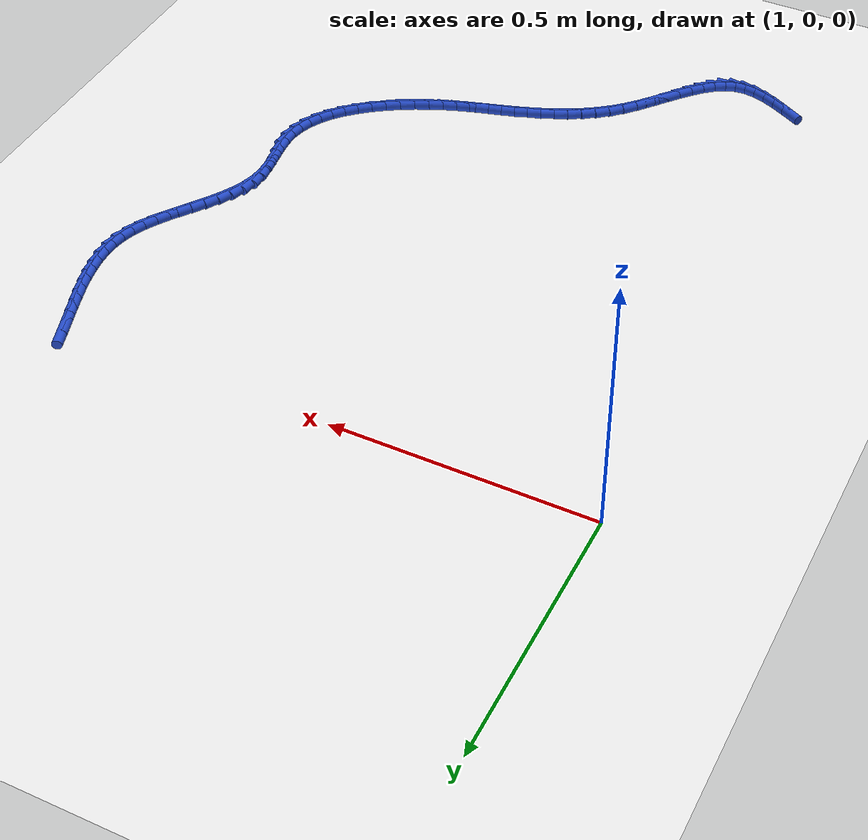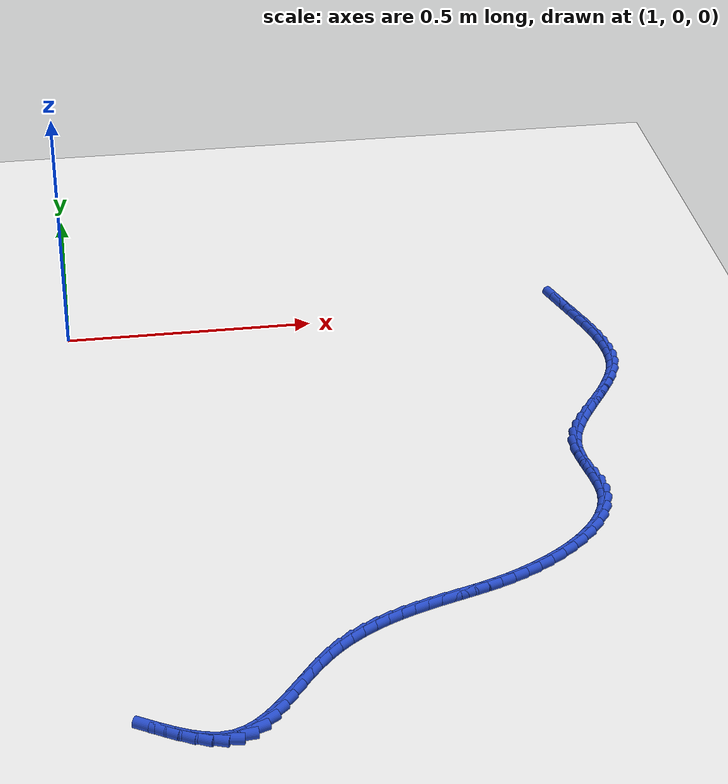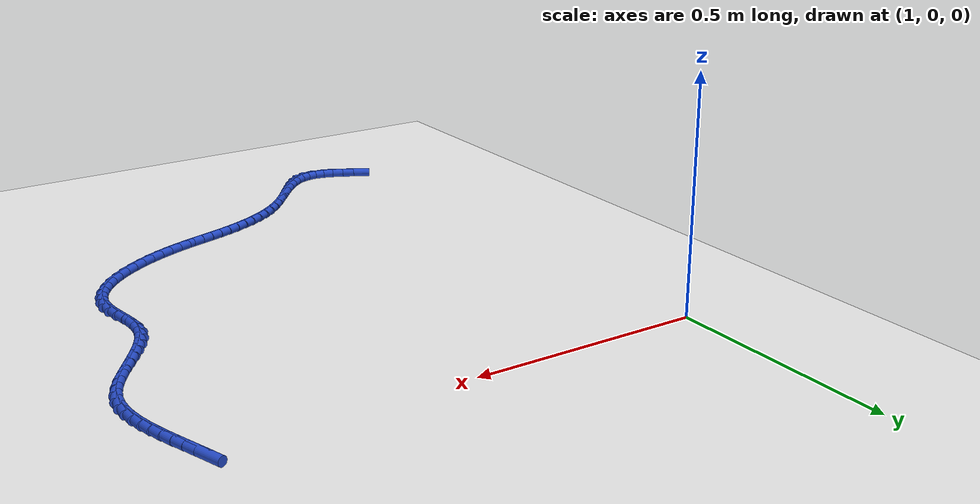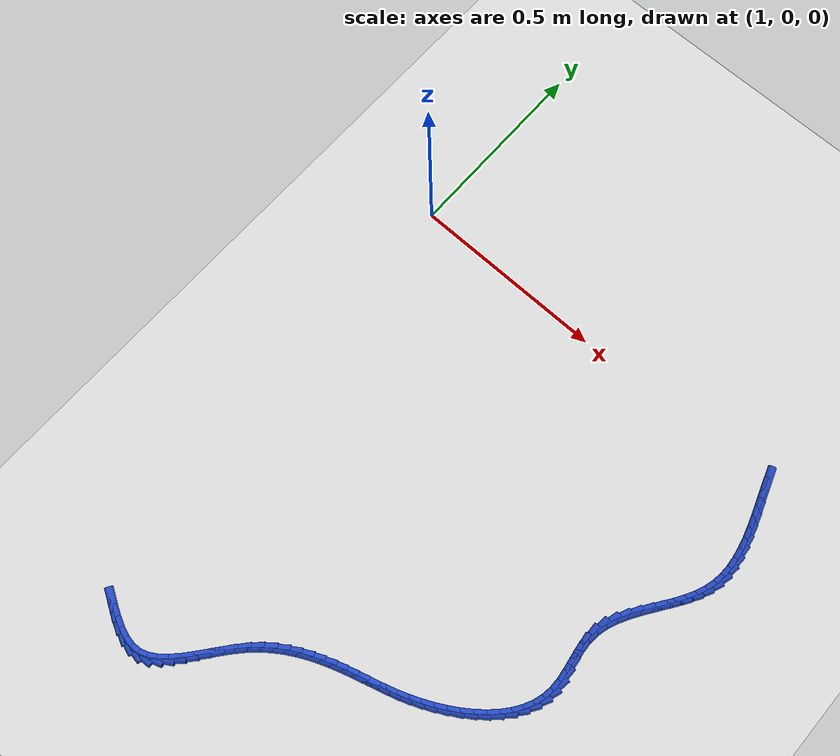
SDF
<sdf version="1.6">
 <world name="default">
  <model name="ground_plane">
   <static>1</static>
   <link name="link">
    <collision name="collision">
     <geometry><plane><normal>0 0 1</normal><size>100 100</size></plane></geometry>
     <surface><friction><ode><mu>100</mu><mu2>50</mu2></ode></friction></surface>
    </collision>
    <visual name="visual">
     <cast_shadows>0</cast_shadows>
     <geometry><plane><normal>0 0 1</normal><size>100 100</size></plane></geometry>
     <material>
      <script><uri>file://media/materials/scripts/gazebo.material</uri><name>Gazebo/WhiteGlow</name></script>
     </material>
    </visual>
   </link>
  </model>
  <model name="line">
   <link name="link_137">
    <pose>2.028803340235459 0.009797451628139248 0.01 0 1.57 -1.2444256641460556</pose>
    <collision name="collision">
     <geometry><cylinder><radius>0.01</radius><length>0.08</length></cylinder></geometry>
    </collision>
    <visual name="visual">
     <material>
      <script><name>Gazebo/Blue</name><uri>file://media/materials/scripts/gazebo.material</uri></script>
     </material>
     <geometry><cylinder><radius>0.01</radius><length>0.08</length></cylinder></geometry>
    </visual>
   </link>
   <link name="link_138">
    <pose>2.037893691281057 -0.01705935607861669 0.01 0 1.57 -1.2396976369071522</pose>
    <collision name="collision">
     <geometry><cylinder><radius>0.01</radius><length>0.08</length></cylinder></geometry>
    </collision>
    <visual name="visual">
     <material>
      <script><name>Gazebo/Blue</name><uri>file://media/materials/scripts/gazebo.material</uri></script>
     </material>
     <geometry><cylinder><radius>0.01</radius><length>0.08</length></cylinder></geometry>
    </visual>
   </link>
   <link name="link_139">
    <pose>2.0471262742887304 -0.04391755107153796 0.01 0 1.57 -1.247375525983384</pose>
    <collision name="collision">
     <geometry><cylinder><radius>0.01</radius><length>0.08</length></cylinder></geometry>
    </collision>
    <visual name="visual">
     <material>
      <script><name>Gazebo/Blue</name><uri>file://media/materials/scripts/gazebo.material</uri></script>
     </material>
     <geometry><cylinder><radius>0.01</radius><length>0.08</length></cylinder></geometry>
    </visual>
   </link>
   <link name="link_140">
    <pose>2.056109026346599 -0.07071652104633279 0.01 0 1.57 -1.2677875328046018</pose>
    <collision name="collision">
     <geometry><cylinder><radius>0.01</radius><length>0.08</length></cylinder></geometry>
    </collision>
    <visual name="visual">
     <material>
      <script><name>Gazebo/Blue</name><uri>file://media/materials/scripts/gazebo.material</uri></script>
     </material>
     <geometry><cylinder><radius>0.01</radius><length>0.08</length></cylinder></geometry>
    </visual>
   </link>
   <link name="link_141">
    <pose>2.0644498845427854 -0.09739565369870931 0.01 0 1.57 -1.3017368532502958</pose>
    <collision name="collision">
     <geometry><cylinder><radius>0.01</radius><length>0.08</length></cylinder></geometry>
    </collision>
    <visual name="visual">
     <material>
      <script><name>Gazebo/Blue</name><uri>file://media/materials/scripts/gazebo.material</uri></script>
     </material>
     <geometry><cylinder><radius>0.01</radius><length>0.08</length></cylinder></geometry>
    </visual>
   </link>
   <link name="link_142">
    <pose>2.07175678596541 -0.1238943367243733 0.01 0 1.57 -1.3504638349806817</pose>
    <collision name="collision">
     <geometry><cylinder><radius>0.01</radius><length>0.08</length></cylinder></geometry>
    </collision>
    <visual name="visual">
     <material>
      <script><name>Gazebo/Blue</name><uri>file://media/materials/scripts/gazebo.material</uri></script>
     </material>
     <geometry><cylinder><radius>0.01</radius><length>0.08</length></cylinder></geometry>
    </visual>
   </link>
   <link name="link_143">
    <pose>2.0776376677025934 -0.15015195781903376 0.01 0 1.57 -1.415529474384406</pose>
    <collision name="collision">
     <geometry><cylinder><radius>0.01</radius><length>0.08</length></cylinder></geometry>
    </collision>
    <visual name="visual">
     <material>
      <script><name>Gazebo/Blue</name><uri>file://media/materials/scripts/gazebo.material</uri></script>
     </material>
     <geometry><cylinder><radius>0.01</radius><length>0.08</length></cylinder></geometry>
    </visual>
   </link>
   <link name="link_144">
    <pose>2.0817004668424555 -0.17610790467839643 0.01 0 1.57 -1.4985351561907372</pose>
    <collision name="collision">
     <geometry><cylinder><radius>0.01</radius><length>0.08</length></cylinder></geometry>
    </collision>
    <visual name="visual">
     <material>
      <script><name>Gazebo/Blue</name><uri>file://media/materials/scripts/gazebo.material</uri></script>
     </material>
     <geometry><cylinder><radius>0.01</radius><length>0.08</length></cylinder></geometry>
    </visual>
   </link>
   <link name="link_145">
    <pose>2.083553120473119 -0.20170156499817032 0.01 0 1.57 1.5410263356693488</pose>
    <collision name="collision">
     <geometry><cylinder><radius>0.01</radius><length>0.08</length></cylinder></geometry>
    </collision>
    <visual name="visual">
     <material>
      <script><name>Gazebo/Blue</name><uri>file://media/materials/scripts/gazebo.material</uri></script>
     </material>
     <geometry><cylinder><radius>0.01</radius><length>0.08</length></cylinder></geometry>
    </visual>
   </link>
   <link name="link_146">
    <pose>2.082803565682704 -0.22687232647406128 0.01 0 1.57 1.4202928965746395</pose>
    <collision name="collision">
     <geometry><cylinder><radius>0.01</radius><length>0.08</length></cylinder></geometry>
    </collision>
    <visual name="visual">
     <material>
      <script><name>Gazebo/Blue</name><uri>file://media/materials/scripts/gazebo.material</uri></script>
     </material>
     <geometry><cylinder><radius>0.01</radius><length>0.08</length></cylinder></geometry>
    </visual>
   </link>
   <link name="link_147">
    <pose>2.079059739559331 -0.2515595768017781 0.01 0 1.57 1.2846820670003232</pose>
    <collision name="collision">
     <geometry><cylinder><radius>0.01</radius><length>0.08</length></cylinder></geometry>
    </collision>
    <visual name="visual">
     <material>
      <script><name>Gazebo/Blue</name><uri>file://media/materials/scripts/gazebo.material</uri></script>
     </material>
     <geometry><cylinder><radius>0.01</radius><length>0.08</length></cylinder></geometry>
    </visual>
   </link>
   <link name="link_148">
    <pose>2.0719558659725643 -0.2757071432725313 0.01 0 1.57 1.1606111574790388</pose>
    <collision name="collision">
     <geometry><cylinder><radius>0.01</radius><length>0.08</length></cylinder></geometry>
    </collision>
    <visual name="visual">
     <material>
      <script><name>Gazebo/Blue</name><uri>file://media/materials/scripts/gazebo.material</uri></script>
     </material>
     <geometry><cylinder><radius>0.01</radius><length>0.08</length></cylinder></geometry>
    </visual>
   </link>
   <link name="link_149">
    <pose>2.0616741291144356 -0.2993513986338731 0.01 0 1.57 1.0691576318690421</pose>
    <collision name="collision">
     <geometry><cylinder><radius>0.01</radius><length>0.08</length></cylinder></geometry>
    </collision>
    <visual name="visual">
     <material>
      <script><name>Gazebo/Blue</name><uri>file://media/materials/scripts/gazebo.material</uri></script>
     </material>
     <geometry><cylinder><radius>0.01</radius><length>0.08</length></cylinder></geometry>
    </visual>
   </link>
   <link name="link_150">
    <pose>2.0489149421524595 -0.32261623973876213 0.01 0 1.57 1.008054456794518</pose>
    <collision name="collision">
     <geometry><cylinder><radius>0.01</radius><length>0.08</length></cylinder></geometry>
    </collision>
    <visual name="visual">
     <material>
      <script><name>Gazebo/Blue</name><uri>file://media/materials/scripts/gazebo.material</uri></script>
     </material>
     <geometry><cylinder><radius>0.01</radius><length>0.08</length></cylinder></geometry>
    </visual>
   </link>
   <link name="link_151">
    <pose>2.0343990529646137 -0.34562899778564427 0.01 0 1.57 0.9739782910002871</pose>
    <collision name="collision">
     <geometry><cylinder><radius>0.01</radius><length>0.08</length></cylinder></geometry>
    </collision>
    <visual name="visual">
     <material>
      <script><name>Gazebo/Blue</name><uri>file://media/materials/scripts/gazebo.material</uri></script>
     </material>
     <geometry><cylinder><radius>0.01</radius><length>0.08</length></cylinder></geometry>
    </visual>
   </link>
   <link name="link_152">
    <pose>2.018847209428877 -0.36851700397296555 0.01 0 1.57 0.9646694848656698</pose>
    <collision name="collision">
     <geometry><cylinder><radius>0.01</radius><length>0.08</length></cylinder></geometry>
    </collision>
    <visual name="visual">
     <material>
      <script><name>Gazebo/Blue</name><uri>file://media/materials/scripts/gazebo.material</uri></script>
     </material>
     <geometry><cylinder><radius>0.01</radius><length>0.08</length></cylinder></geometry>
    </visual>
   </link>
   <link name="link_153">
    <pose>2.002980159423227 -0.3914075894991697 0.01 0 1.57 0.9793578677361164</pose>
    <collision name="collision">
     <geometry><cylinder><radius>0.01</radius><length>0.08</length></cylinder></geometry>
    </collision>
    <visual name="visual">
     <material>
      <script><name>Gazebo/Blue</name><uri>file://media/materials/scripts/gazebo.material</uri></script>
     </material>
     <geometry><cylinder><radius>0.01</radius><length>0.08</length></cylinder></geometry>
    </visual>
   </link>
   <link name="link_154">
    <pose>1.9875186508256435 -0.41442808556270333 0.01 0 1.57 1.01881555671694</pose>
    <collision name="collision">
     <geometry><cylinder><radius>0.01</radius><length>0.08</length></cylinder></geometry>
    </collision>
    <visual name="visual">
     <material>
      <script><name>Gazebo/Blue</name><uri>file://media/materials/scripts/gazebo.material</uri></script>
     </material>
     <geometry><cylinder><radius>0.01</radius><length>0.08</length></cylinder></geometry>
    </visual>
   </link>
   <link name="link_155">
    <pose>1.9731834315141037 -0.4377058233620102 0.01 0 1.57 1.0851828153231158</pose>
    <collision name="collision">
     <geometry><cylinder><radius>0.01</radius><length>0.08</length></cylinder></geometry>
    </collision>
    <visual name="visual">
     <material>
      <script><name>Gazebo/Blue</name><uri>file://media/materials/scripts/gazebo.material</uri></script>
     </material>
     <geometry><cylinder><radius>0.01</radius><length>0.08</length></cylinder></geometry>
    </visual>
   </link>
   <link name="link_156">
    <pose>1.9606952493665863 -0.46136813409553695 0.01 0 1.57 1.1813815139749293</pose>
    <collision name="collision">
     <geometry><cylinder><radius>0.01</radius><length>0.08</length></cylinder></geometry>
    </collision>
    <visual name="visual">
     <material>
      <script><name>Gazebo/Blue</name><uri>file://media/materials/scripts/gazebo.material</uri></script>
     </material>
     <geometry><cylinder><radius>0.01</radius><length>0.08</length></cylinder></geometry>
    </visual>
   </link>
   <link name="link_157">
    <pose>1.9507748522610697 -0.4855423489617273 0.01 0 1.57 1.3096317440548022</pose>
    <collision name="collision">
     <geometry><cylinder><radius>0.01</radius><length>0.08</length></cylinder></geometry>
    </collision>
    <visual name="visual">
     <material>
      <script><name>Gazebo/Blue</name><uri>file://media/materials/scripts/gazebo.material</uri></script>
     </material>
     <geometry><cylinder><radius>0.01</radius><length>0.08</length></cylinder></geometry>
    </visual>
   </link>
   <link name="link_158">
    <pose>1.9441429880755323 -0.5103557991590281 0.01 0 1.57 1.4680765707878016</pose>
    <collision name="collision">
     <geometry><cylinder><radius>0.01</radius><length>0.08</length></cylinder></geometry>
    </collision>
    <visual name="visual">
     <material>
      <script><name>Gazebo/Blue</name><uri>file://media/materials/scripts/gazebo.material</uri></script>
     </material>
     <geometry><cylinder><radius>0.01</radius><length>0.08</length></cylinder></geometry>
    </visual>
   </link>
   <link name="link_159">
    <pose>1.941506413102723 -0.5359331116952923 0.01 0 1.57 -1.5257464132899319</pose>
    <collision name="collision">
     <geometry><cylinder><radius>0.01</radius><length>0.08</length></cylinder></geometry>
    </collision>
    <visual name="visual">
     <material>
      <script><name>Gazebo/Blue</name><uri>file://media/materials/scripts/gazebo.material</uri></script>
     </material>
     <geometry><cylinder><radius>0.01</radius><length>0.08</length></cylinder></geometry>
    </visual>
   </link>
   <link name="link_160">
    <pose>1.942691834720898 -0.5622288242028987 0.01 0 1.57 -1.4424365370519117</pose>
    <collision name="collision">
     <geometry><cylinder><radius>0.01</radius><length>0.08</length></cylinder></geometry>
    </collision>
    <visual name="visual">
     <material>
      <script><name>Gazebo/Blue</name><uri>file://media/materials/scripts/gazebo.material</uri></script>
     </material>
     <geometry><cylinder><radius>0.01</radius><length>0.08</length></cylinder></geometry>
    </visual>
   </link>
   <link name="link_161">
    <pose>1.9461380405156927 -0.588929227394251 0.01 0 1.57 -1.4215998071479574</pose>
    <collision name="collision">
     <geometry><cylinder><radius>0.01</radius><length>0.08</length></cylinder></geometry>
    </collision>
    <visual name="visual">
     <material>
      <script><name>Gazebo/Blue</name><uri>file://media/materials/scripts/gazebo.material</uri></script>
     </material>
     <geometry><cylinder><radius>0.01</radius><length>0.08</length></cylinder></geometry>
    </visual>
   </link>
   <link name="link_162">
    <pose>1.9501615961551255 -0.6156969898292838 0.01 0 1.57 -1.4611355936012953</pose>
    <collision name="collision">
     <geometry><cylinder><radius>0.01</radius><length>0.08</length></cylinder></geometry>
    </collision>
    <visual name="visual">
     <material>
      <script><name>Gazebo/Blue</name><uri>file://media/materials/scripts/gazebo.material</uri></script>
     </material>
     <geometry><cylinder><radius>0.01</radius><length>0.08</length></cylinder></geometry>
    </visual>
   </link>
   <link name="link_163">
    <pose>1.9530790673072143 -0.642194780067934 0.01 0 1.57 -1.5658543072398359</pose>
    <collision name="collision">
     <geometry><cylinder><radius>0.01</radius><length>0.08</length></cylinder></geometry>
    </collision>
    <visual name="visual">
     <material>
      <script><name>Gazebo/Blue</name><uri>file://media/materials/scripts/gazebo.material</uri></script>
     </material>
     <geometry><cylinder><radius>0.01</radius><length>0.08</length></cylinder></geometry>
    </visual>
   </link>
   <link name="link_164">
    <pose>1.9532070196399778 -0.6680852666701357 0.01 0 1.57 1.4119589951115636</pose>
    <collision name="collision">
     <geometry><cylinder><radius>0.01</radius><length>0.08</length></cylinder></geometry>
    </collision>
    <visual name="visual">
     <material>
      <script><name>Gazebo/Blue</name><uri>file://media/materials/scripts/gazebo.material</uri></script>
     </material>
     <geometry><cylinder><radius>0.01</radius><length>0.08</length></cylinder></geometry>
    </visual>
   </link>
   <link name="link_165">
    <pose>1.9492035499832414 -0.6930777832714302 0.01 0 1.57 1.2459746696754366</pose>
    <collision name="collision">
     <geometry><cylinder><radius>0.01</radius><length>0.08</length></cylinder></geometry>
    </collision>
    <visual name="visual">
     <material>
      <script><name>Gazebo/Blue</name><uri>file://media/materials/scripts/gazebo.material</uri></script>
     </material>
     <geometry><cylinder><radius>0.01</radius><length>0.08</length></cylinder></geometry>
    </visual>
   </link>
   <link name="link_166">
    <pose>1.9411233530695913 -0.717072487519945 0.01 0 1.57 1.0976973272975927</pose>
    <collision name="collision">
     <geometry><cylinder><radius>0.01</radius><length>0.08</length></cylinder></geometry>
    </collision>
    <visual name="visual">
     <material>
      <script><name>Gazebo/Blue</name><uri>file://media/materials/scripts/gazebo.material</uri></script>
     </material>
     <geometry><cylinder><radius>0.01</radius><length>0.08</length></cylinder></geometry>
    </visual>
   </link>
   <link name="link_167">
    <pose>1.929378060590458 -0.740018307108928 0.01 0 1.57 0.9691394508260817</pose>
    <collision name="collision">
     <geometry><cylinder><radius>0.01</radius><length>0.08</length></cylinder></geometry>
    </collision>
    <visual name="visual">
     <material>
      <script><name>Gazebo/Blue</name><uri>file://media/materials/scripts/gazebo.material</uri></script>
     </material>
     <geometry><cylinder><radius>0.01</radius><length>0.08</length></cylinder></geometry>
    </visual>
   </link>
   <link name="link_168">
    <pose>1.9143793043761188 -0.7618641697505958 0.01 0 1.57 0.8593312552482374</pose>
    <collision name="collision">
     <geometry><cylinder><radius>0.01</radius><length>0.08</length></cylinder></geometry>
    </collision>
    <visual name="visual">
     <material>
      <script><name>Gazebo/Blue</name><uri>file://media/materials/scripts/gazebo.material</uri></script>
     </material>
     <geometry><cylinder><radius>0.01</radius><length>0.08</length></cylinder></geometry>
    </visual>
   </link>
   <link name="link_169">
    <pose>1.8965387162568481 -0.7825590031571668 0.01 0 1.57 0.765833571702966</pose>
    <collision name="collision">
     <geometry><cylinder><radius>0.01</radius><length>0.08</length></cylinder></geometry>
    </collision>
    <visual name="visual">
     <material>
      <script><name>Gazebo/Blue</name><uri>file://media/materials/scripts/gazebo.material</uri></script>
     </material>
     <geometry><cylinder><radius>0.01</radius><length>0.08</length></cylinder></geometry>
    </visual>
   </link>
   <link name="link_170">
    <pose>1.876267928062923 -0.8020517350408575 0.01 0 1.57 0.6858050738572723</pose>
    <collision name="collision">
     <geometry><cylinder><radius>0.01</radius><length>0.08</length></cylinder></geometry>
    </collision>
    <visual name="visual">
     <material>
      <script><name>Gazebo/Blue</name><uri>file://media/materials/scripts/gazebo.material</uri></script>
     </material>
     <geometry><cylinder><radius>0.01</radius><length>0.08</length></cylinder></geometry>
    </visual>
   </link>
   <link name="link_171">
    <pose>1.8539785716246193 -0.8202912931138862 0.01 0 1.57 0.6165413141381255</pose>
    <collision name="collision">
     <geometry><cylinder><radius>0.01</radius><length>0.08</length></cylinder></geometry>
    </collision>
    <visual name="visual">
     <material>
      <script><name>Gazebo/Blue</name><uri>file://media/materials/scripts/gazebo.material</uri></script>
     </material>
     <geometry><cylinder><radius>0.01</radius><length>0.08</length></cylinder></geometry>
    </visual>
   </link>
   <link name="link_172">
    <pose>1.8300822787722109 -0.8372266050884705 0.01 0 1.57 0.5556634216573321</pose>
    <collision name="collision">
     <geometry><cylinder><radius>0.01</radius><length>0.08</length></cylinder></geometry>
    </collision>
    <visual name="visual">
     <material>
      <script><name>Gazebo/Blue</name><uri>file://media/materials/scripts/gazebo.material</uri></script>
     </material>
     <geometry><cylinder><radius>0.01</radius><length>0.08</length></cylinder></geometry>
    </visual>
   </link>
   <link name="link_173">
    <pose>1.8049906813359762 -0.8528065986768276 0.01 0 1.57 0.5011267172294569</pose>
    <collision name="collision">
     <geometry><cylinder><radius>0.01</radius><length>0.08</length></cylinder></geometry>
    </collision>
    <visual name="visual">
     <material>
      <script><name>Gazebo/Blue</name><uri>file://media/materials/scripts/gazebo.material</uri></script>
     </material>
     <geometry><cylinder><radius>0.01</radius><length>0.08</length></cylinder></geometry>
    </visual>
   </link>
   <link name="link_174">
    <pose>1.779115411146189 -0.8669802015911757 0.01 0 1.57 0.4511498441239946</pose>
    <collision name="collision">
     <geometry><cylinder><radius>0.01</radius><length>0.08</length></cylinder></geometry>
    </collision>
    <visual name="visual">
     <material>
      <script><name>Gazebo/Blue</name><uri>file://media/materials/scripts/gazebo.material</uri></script>
     </material>
     <geometry><cylinder><radius>0.01</radius><length>0.08</length></cylinder></geometry>
    </visual>
   </link>
   <link name="link_175">
    <pose>1.7528681000331265 -0.8796963415437313 0.01 0 1.57 0.404108986745381</pose>
    <collision name="collision">
     <geometry><cylinder><radius>0.01</radius><length>0.08</length></cylinder></geometry>
    </collision>
    <visual name="visual">
     <material>
      <script><name>Gazebo/Blue</name><uri>file://media/materials/scripts/gazebo.material</uri></script>
     </material>
     <geometry><cylinder><radius>0.01</radius><length>0.08</length></cylinder></geometry>
    </visual>
   </link>
   <link name="link_176">
    <pose>1.7266603798270639 -0.8909039462467132 0.01 0 1.57 0.3595668994602558</pose>
    <collision name="collision">
     <geometry><cylinder><radius>0.01</radius><length>0.08</length></cylinder></geometry>
    </collision>
    <visual name="visual">
     <material>
      <script><name>Gazebo/Blue</name><uri>file://media/materials/scripts/gazebo.material</uri></script>
     </material>
     <geometry><cylinder><radius>0.01</radius><length>0.08</length></cylinder></geometry>
    </visual>
   </link>
   <link name="link_177">
    <pose>1.7008437297860184 -0.9006086436736673 0.01 0 1.57 0.32363526792760294</pose>
    <collision name="collision">
     <geometry><cylinder><radius>0.01</radius><length>0.08</length></cylinder></geometry>
    </collision>
    <visual name="visual">
     <material>
      <script><name>Gazebo/Blue</name><uri>file://media/materials/scripts/gazebo.material</uri></script>
     </material>
     <geometry><cylinder><radius>0.01</radius><length>0.08</length></cylinder></geometry>
    </visual>
   </link>
   <link name="link_178">
    <pose>1.675435037666949 -0.9091314502318537 0.01 0 1.57 0.30024602669080697</pose>
    <collision name="collision">
     <geometry><cylinder><radius>0.01</radius><length>0.08</length></cylinder></geometry>
    </collision>
    <visual name="visual">
     <material>
      <script><name>Gazebo/Blue</name><uri>file://media/materials/scripts/gazebo.material</uri></script>
     </material>
     <geometry><cylinder><radius>0.01</radius><length>0.08</length></cylinder></geometry>
    </visual>
   </link>
   <link name="link_179">
    <pose>1.650335531741024 -0.9169024038187736 0.01 0 1.57 0.2908109525370139</pose>
    <collision name="collision">
     <geometry><cylinder><radius>0.01</radius><length>0.08</length></cylinder></geometry>
    </collision>
    <visual name="visual">
     <material>
      <script><name>Gazebo/Blue</name><uri>file://media/materials/scripts/gazebo.material</uri></script>
     </material>
     <geometry><cylinder><radius>0.01</radius><length>0.08</length></cylinder></geometry>
    </visual>
   </link>
   <link name="link_180">
    <pose>1.6254463296018218 -0.924351646657447 0.01 0 1.57 0.2960530615120554</pose>
    <collision name="collision">
     <geometry><cylinder><radius>0.01</radius><length>0.08</length></cylinder></geometry>
    </collision>
    <visual name="visual">
     <material>
      <script><name>Gazebo/Blue</name><uri>file://media/materials/scripts/gazebo.material</uri></script>
     </material>
     <geometry><cylinder><radius>0.01</radius><length>0.08</length></cylinder></geometry>
    </visual>
   </link>
   <link name="link_181">
    <pose>1.6006685871326707 -0.931909276459858 0.01 0 1.57 0.31459283557238427</pose>
    <collision name="collision">
     <geometry><cylinder><radius>0.01</radius><length>0.08</length></cylinder></geometry>
    </collision>
    <visual name="visual">
     <material>
      <script><name>Gazebo/Blue</name><uri>file://media/materials/scripts/gazebo.material</uri></script>
     </material>
     <geometry><cylinder><radius>0.01</radius><length>0.08</length></cylinder></geometry>
    </visual>
   </link>
   <link name="link_182">
    <pose>1.5759483356026154 -0.9399532242384602 0.01 0 1.57 0.3421167737395713</pose>
    <collision name="collision">
     <geometry><cylinder><radius>0.01</radius><length>0.08</length></cylinder></geometry>
    </collision>
    <visual name="visual">
     <material>
      <script><name>Gazebo/Blue</name><uri>file://media/materials/scripts/gazebo.material</uri></script>
     </material>
     <geometry><cylinder><radius>0.01</radius><length>0.08</length></cylinder></geometry>
    </visual>
   </link>
   <link name="link_183">
    <pose>1.5513631450205323 -0.9487085099653143 0.01 0 1.57 0.37782468968369515</pose>
    <collision name="collision">
     <geometry><cylinder><radius>0.01</radius><length>0.08</length></cylinder></geometry>
    </collision>
    <visual name="visual">
     <material>
      <script><name>Gazebo/Blue</name><uri>file://media/materials/scripts/gazebo.material</uri></script>
     </material>
     <geometry><cylinder><radius>0.01</radius><length>0.08</length></cylinder></geometry>
    </visual>
   </link>
   <link name="link_184">
    <pose>1.5270145615985151 -0.9583722817765284 0.01 0 1.57 0.4216310725599819</pose>
    <collision name="collision">
     <geometry><cylinder><radius>0.01</radius><length>0.08</length></cylinder></geometry>
    </collision>
    <visual name="visual">
     <material>
      <script><name>Gazebo/Blue</name><uri>file://media/materials/scripts/gazebo.material</uri></script>
     </material>
     <geometry><cylinder><radius>0.01</radius><length>0.08</length></cylinder></geometry>
    </visual>
   </link>
   <link name="link_185">
    <pose>1.5030041315486555 -0.9691416878082112 0.01 0 1.57 0.47333504378161156</pose>
    <collision name="collision">
     <geometry><cylinder><radius>0.01</radius><length>0.08</length></cylinder></geometry>
    </collision>
    <visual name="visual">
     <material>
      <script><name>Gazebo/Blue</name><uri>file://media/materials/scripts/gazebo.material</uri></script>
     </material>
     <geometry><cylinder><radius>0.01</radius><length>0.08</length></cylinder></geometry>
    </visual>
   </link>
   <link name="link_186">
    <pose>1.4794334010830459 -0.9812138761964696 0.01 0 1.57 0.5325418894230255</pose>
    <collision name="collision">
     <geometry><cylinder><radius>0.01</radius><length>0.08</length></cylinder></geometry>
    </collision>
    <visual name="visual">
     <material>
      <script><name>Gazebo/Blue</name><uri>file://media/materials/scripts/gazebo.material</uri></script>
     </material>
     <geometry><cylinder><radius>0.01</radius><length>0.08</length></cylinder></geometry>
    </visual>
   </link>
   <link name="link_187">
    <pose>1.4564039164137788 -0.9947859950774134 0.01 0 1.57 0.5985879131052498</pose>
    <collision name="collision">
     <geometry><cylinder><radius>0.01</radius><length>0.08</length></cylinder></geometry>
    </collision>
    <visual name="visual">
     <material>
      <script><name>Gazebo/Blue</name><uri>file://media/materials/scripts/gazebo.material</uri></script>
     </material>
     <geometry><cylinder><radius>0.01</radius><length>0.08</length></cylinder></geometry>
    </visual>
   </link>
   <link name="link_188">
    <pose>1.434017223752947 -1.0100551925871497 0.01 0 1.57 0.670487472882372</pose>
    <collision name="collision">
     <geometry><cylinder><radius>0.01</radius><length>0.08</length></cylinder></geometry>
    </collision>
    <visual name="visual">
     <material>
      <script><name>Gazebo/Blue</name><uri>file://media/materials/scripts/gazebo.material</uri></script>
     </material>
     <geometry><cylinder><radius>0.01</radius><length>0.08</length></cylinder></geometry>
    </visual>
   </link>
   <link name="link_189">
    <pose>1.4123748693126417 -1.0272186168617867 0.01 0 1.57 0.746924723591687</pose>
    <collision name="collision">
     <geometry><cylinder><radius>0.01</radius><length>0.08</length></cylinder></geometry>
    </collision>
    <visual name="visual">
     <material>
      <script><name>Gazebo/Blue</name><uri>file://media/materials/scripts/gazebo.material</uri></script>
     </material>
     <geometry><cylinder><radius>0.01</radius><length>0.08</length></cylinder></geometry>
    </visual>
   </link>
   <link name="link_190">
    <pose>1.3915783993048754 -1.0464734160371665 0.01 0 1.57 0.8206485658731842</pose>
    <collision name="collision">
     <geometry><cylinder><radius>0.01</radius><length>0.08</length></cylinder></geometry>
    </collision>
    <visual name="visual">
     <material>
      <script><name>Gazebo/Blue</name><uri>file://media/materials/scripts/gazebo.material</uri></script>
     </material>
     <geometry><cylinder><radius>0.01</radius><length>0.08</length></cylinder></geometry>
    </visual>
   </link>
   <link name="link_191">
    <pose>1.3716737590811077 -1.0678332483104613 0.01 0 1.57 0.8700527031282588</pose>
    <collision name="collision">
     <geometry><cylinder><radius>0.01</radius><length>0.08</length></cylinder></geometry>
    </collision>
    <visual name="visual">
     <material>
      <script><name>Gazebo/Blue</name><uri>file://media/materials/scripts/gazebo.material</uri></script>
     </material>
     <geometry><cylinder><radius>0.01</radius><length>0.08</length></cylinder></geometry>
    </visual>
   </link>
   <link name="link_192">
    <pose>1.352485245332223 -1.0905803029999124 0.01 0 1.57 0.893020097044596</pose>
    <collision name="collision">
     <geometry><cylinder><radius>0.01</radius><length>0.08</length></cylinder></geometry>
    </collision>
    <visual name="visual">
     <material>
      <script><name>Gazebo/Blue</name><uri>file://media/materials/scripts/gazebo.material</uri></script>
     </material>
     <geometry><cylinder><radius>0.01</radius><length>0.08</length></cylinder></geometry>
    </visual>
   </link>
   <link name="link_193">
    <pose>1.3337819306394252 -1.1138145228110714 0.01 0 1.57 0.8909469118897342</pose>
    <collision name="collision">
     <geometry><cylinder><radius>0.01</radius><length>0.08</length></cylinder></geometry>
    </collision>
    <visual name="visual">
     <material>
      <script><name>Gazebo/Blue</name><uri>file://media/materials/scripts/gazebo.material</uri></script>
     </material>
     <geometry><cylinder><radius>0.01</radius><length>0.08</length></cylinder></geometry>
    </visual>
   </link>
   <link name="link_194">
    <pose>1.3153328875839183 -1.1366358504494896 0.01 0 1.57 0.8624395824565251</pose>
    <collision name="collision">
     <geometry><cylinder><radius>0.01</radius><length>0.08</length></cylinder></geometry>
    </collision>
    <visual name="visual">
     <material>
      <script><name>Gazebo/Blue</name><uri>file://media/materials/scripts/gazebo.material</uri></script>
     </material>
     <geometry><cylinder><radius>0.01</radius><length>0.08</length></cylinder></geometry>
    </visual>
   </link>
   <link name="link_195">
    <pose>1.2969071887469072 -1.1581442286207169 0.01 0 1.57 0.8028525698732814</pose>
    <collision name="collision">
     <geometry><cylinder><radius>0.01</radius><length>0.08</length></cylinder></geometry>
    </collision>
    <visual name="visual">
     <material>
      <script><name>Gazebo/Blue</name><uri>file://media/materials/scripts/gazebo.material</uri></script>
     </material>
     <geometry><cylinder><radius>0.01</radius><length>0.08</length></cylinder></geometry>
    </visual>
   </link>
   <link name="link_196">
    <pose>1.2782739067095952 -1.1774396000303051 0.01 0 1.57 0.7036192778651209</pose>
    <collision name="collision">
     <geometry><cylinder><radius>0.01</radius><length>0.08</length></cylinder></geometry>
    </collision>
    <visual name="visual">
     <material>
      <script><name>Gazebo/Blue</name><uri>file://media/materials/scripts/gazebo.material</uri></script>
     </material>
     <geometry><cylinder><radius>0.01</radius><length>0.08</length></cylinder></geometry>
    </visual>
   </link>
   <link name="link_197">
    <pose>1.259202114053188 -1.1936219073838041 0.01 0 1.57 0.5524165091892249</pose>
    <collision name="collision">
     <geometry><cylinder><radius>0.01</radius><length>0.08</length></cylinder></geometry>
    </collision>
    <visual name="visual">
     <material>
      <script><name>Gazebo/Blue</name><uri>file://media/materials/scripts/gazebo.material</uri></script>
     </material>
     <geometry><cylinder><radius>0.01</radius><length>0.08</length></cylinder></geometry>
    </visual>
   </link>
   <link name="link_198">
    <pose>1.239460883358888 -1.2057910933867655 0.01 0 1.57 0.3380314656156867</pose>
    <collision name="collision">
     <geometry><cylinder><radius>0.01</radius><length>0.08</length></cylinder></geometry>
    </collision>
    <visual name="visual">
     <material>
      <script><name>Gazebo/Blue</name><uri>file://media/materials/scripts/gazebo.material</uri></script>
     </material>
     <geometry><cylinder><radius>0.01</radius><length>0.08</length></cylinder></geometry>
    </visual>
   </link>
   <link name="link_199">
    <pose>1.218819287207901 -1.2130471007447394 0.01 0 1.57 0.07363251523773652</pose>
    <collision name="collision">
     <geometry><cylinder><radius>0.01</radius><length>0.08</length></cylinder></geometry>
    </collision>
    <visual name="visual">
     <material>
      <script><name>Gazebo/Blue</name><uri>file://media/materials/scripts/gazebo.material</uri></script>
     </material>
     <geometry><cylinder><radius>0.01</radius><length>0.08</length></cylinder></geometry>
    </visual>
   </link>
   <link name="link_200">
    <pose>1.1970792206655054 -1.2146507758141274 0.01 0 1.57 -0.1565394134455219</pose>
    <collision name="collision">
     <geometry><cylinder><radius>0.01</radius><length>0.08</length></cylinder></geometry>
    </collision>
    <visual name="visual">
     <material>
      <script><name>Gazebo/Blue</name><uri>file://media/materials/scripts/gazebo.material</uri></script>
     </material>
     <geometry><cylinder><radius>0.01</radius><length>0.08</length></cylinder></geometry>
    </visual>
   </link>
   <link name="link_201">
    <pose>1.1742853743527186 -1.2110532067148174 0.01 0 1.57 -0.318549994148463</pose>
    <collision name="collision">
     <geometry><cylinder><radius>0.01</radius><length>0.08</length></cylinder></geometry>
    </collision>
    <visual name="visual">
     <material>
      <script><name>Gazebo/Blue</name><uri>file://media/materials/scripts/gazebo.material</uri></script>
     </material>
     <geometry><cylinder><radius>0.01</radius><length>0.08</length></cylinder></geometry>
    </visual>
   </link>
   <link name="link_202">
    <pose>1.1505913455027967 -1.2032393677732038 0.01 0 1.57 -0.4243691890159853</pose>
    <collision name="collision">
     <geometry><cylinder><radius>0.01</radius><length>0.08</length></cylinder></geometry>
    </collision>
    <visual name="visual">
     <material>
      <script><name>Gazebo/Blue</name><uri>file://media/materials/scripts/gazebo.material</uri></script>
     </material>
     <geometry><cylinder><radius>0.01</radius><length>0.08</length></cylinder></geometry>
    </visual>
   </link>
   <link name="link_203">
    <pose>1.1261512468820396 -1.1921967605816952 0.01 0 1.57 -0.4878850230756948</pose>
    <collision name="collision">
     <geometry><cylinder><radius>0.01</radius><length>0.08</length></cylinder></geometry>
    </collision>
    <visual name="visual">
     <material>
      <script><name>Gazebo/Blue</name><uri>file://media/materials/scripts/gazebo.material</uri></script>
     </material>
     <geometry><cylinder><radius>0.01</radius><length>0.08</length></cylinder></geometry>
    </visual>
   </link>
   <link name="link_204">
    <pose>1.101119191256745 -1.1789128867327 0.01 0 1.57 -0.5186549658890511</pose>
    <collision name="collision">
     <geometry><cylinder><radius>0.01</radius><length>0.08</length></cylinder></geometry>
    </collision>
    <visual name="visual">
     <material>
      <script><name>Gazebo/Blue</name><uri>file://media/materials/scripts/gazebo.material</uri></script>
     </material>
     <geometry><cylinder><radius>0.01</radius><length>0.08</length></cylinder></geometry>
    </visual>
   </link>
  </model>
 </world>
</sdf>
